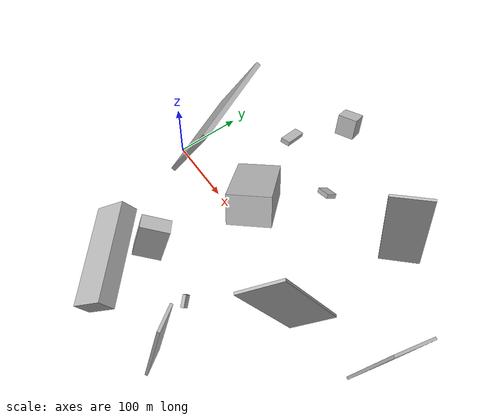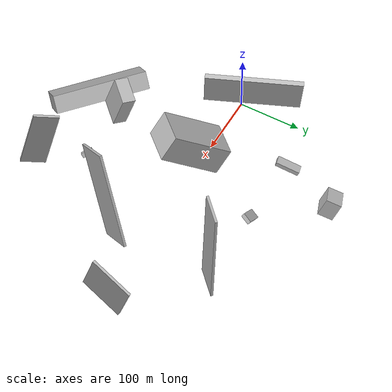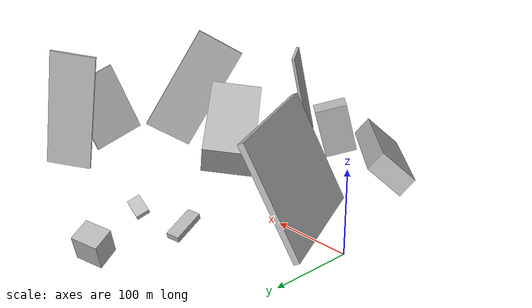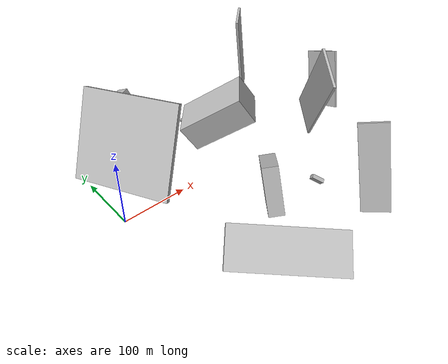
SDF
<sdf version="1.6">
 <world name="default">
  <scene>
   <sky><clouds><speed>12</speed></clouds></sky>
   <ambient>0.4 0.4 0.4 1</ambient>
   <background>0.7 0.7 0.7 1</background>
   <shadows>1</shadows>
  </scene>
  <gravity>0 0 -9.8066</gravity>
  <magnetic_field>6e-06 2.3e-05 -4.2e-05</magnetic_field>
  <physics default="0" name="default_physics" type="ode">
   <ode>
    <solver>
     <type>quick</type>
     <iters>10</iters>
     <sor>1.0</sor>
     <use_dynamic_moi_rescaling>0</use_dynamic_moi_rescaling>
    </solver>
    <constraints>
     <cfm>0</cfm>
     <erp>0.2</erp>
     <contact_max_correcting_vel>100</contact_max_correcting_vel>
     <contact_surface_layer>0.001</contact_surface_layer>
    </constraints>
   </ode>
   <max_step_size>0.004</max_step_size>
   <real_time_factor>1</real_time_factor>
   <real_time_update_rate>250</real_time_update_rate>
  </physics>
  <light name="sun" type="directional">
   <pose>0 0 10 0 0 0</pose>
   <diffuse>0.8 0.8 0.8 1</diffuse>
   <specular>0.2 0.2 0.2 1</specular>
   <attenuation>
    <range>1000</range>
    <constant>0.9</constant>
    <linear>0.01</linear>
    <quadratic>0.001</quadratic>
   </attenuation>
   <direction>-0.5 0.1 -0.9</direction>
  </light>
  <model name="building_1">
   <static>0</static>
   <pose>148.59573698334424 38.618090232906276 72.32729237490896 0.9917327861932319 -0.1207414225369029 0.8075930396522253</pose>
   <link name="link">
    <gravity>0</gravity>
    <pose>0 0 50.5 0 0 0</pose>
    <collision name="collision"><geometry><box><size>60 44 101</size></box></geometry></collision>
    <visual name="visual">
     <cast_shadows>0</cast_shadows>
     <geometry><box><size>60 44 101</size></box></geometry>
     <material>
      <script>
       <uri>model://HANNAS_wall/materials/scripts</uri>
       <uri>model://HANNAS_wall/materials/textures</uri>
       <name>vrc/HANNAS_wall</name>
      </script>
     </material>
    </visual>
   </link>
  </model>
  <model name="building_2">
   <static>0</static>
   <pose>69.33988793135556 -29.163788353206915 97.58062069845371 1.612977661409738 -0.4467218302098498 -2.721089853986741</pose>
   <link name="link">
    <gravity>0</gravity>
    <pose>0 0 75.0 0 0 0</pose>
    <collision name="collision"><geometry><box><size>7 133 150</size></box></geometry></collision>
    <visual name="visual">
     <cast_shadows>0</cast_shadows>
     <geometry><box><size>7 133 150</size></box></geometry>
     <material>
      <script>
       <uri>model://HANNAS_wall/materials/scripts</uri>
       <uri>model://HANNAS_wall/materials/textures</uri>
       <name>vrc/HANNAS_wall</name>
      </script>
     </material>
    </visual>
   </link>
  </model>
  <model name="building_3">
   <static>0</static>
   <pose>229.8250695890826 -141.8521428074591 35.87853912610167 -0.5310234330682875 -0.48151077686591665 2.3074289045993854</pose>
   <link name="link">
    <gravity>0</gravity>
    <pose>0 0 4.0 0 0 0</pose>
    <collision name="collision"><geometry><box><size>18 6 8</size></box></geometry></collision>
    <visual name="visual">
     <cast_shadows>0</cast_shadows>
     <geometry><box><size>18 6 8</size></box></geometry>
     <material>
      <script>
       <uri>model://HANNAS_wall/materials/scripts</uri>
       <uri>model://HANNAS_wall/materials/textures</uri>
       <name>vrc/HANNAS_wall</name>
      </script>
     </material>
    </visual>
   </link>
  </model>
  <model name="building_4">
   <static>0</static>
   <pose>312.9940000170616 -78.56805407281824 84.51082523180419 1.0306299967371737 0.015022599387405099 2.574527632856804</pose>
   <link name="link">
    <gravity>0</gravity>
    <pose>0 0 33.5 0 0 0</pose>
    <collision name="collision"><geometry><box><size>4 150 67</size></box></geometry></collision>
    <visual name="visual">
     <cast_shadows>0</cast_shadows>
     <geometry><box><size>4 150 67</size></box></geometry>
     <material>
      <script>
       <uri>model://HANNAS_wall/materials/scripts</uri>
       <uri>model://HANNAS_wall/materials/textures</uri>
       <name>vrc/HANNAS_wall</name>
      </script>
     </material>
    </visual>
   </link>
  </model>
  <model name="building_5">
   <static>0</static>
   <pose>449.04793078908716 17.94336444139219 61.048956384802764 1.4348825759160682 -0.34901845982044816 -1.7422928291599966</pose>
   <link name="link">
    <gravity>0</gravity>
    <pose>0 0 2.0 0 0 0</pose>
    <collision name="collision"><geometry><box><size>72 102 4</size></box></geometry></collision>
    <visual name="visual">
     <cast_shadows>0</cast_shadows>
     <geometry><box><size>72 102 4</size></box></geometry>
     <material>
      <script>
       <uri>model://HANNAS_wall/materials/scripts</uri>
       <uri>model://HANNAS_wall/materials/textures</uri>
       <name>vrc/HANNAS_wall</name>
      </script>
     </material>
    </visual>
   </link>
  </model>
  <model name="building_6">
   <static>0</static>
   <pose>52.3630367073143 -145.783155721114 34.259805752475074 1.6520265192420178 0.8616925205423712 0.8769214502343612</pose>
   <link name="link">
    <gravity>0</gravity>
    <pose>0 0 75.0 0 0 0</pose>
    <collision name="collision"><geometry><box><size>28 55 150</size></box></geometry></collision>
    <visual name="visual">
     <cast_shadows>0</cast_shadows>
     <geometry><box><size>28 55 150</size></box></geometry>
     <material>
      <script>
       <uri>model://HANNAS_wall/materials/scripts</uri>
       <uri>model://HANNAS_wall/materials/textures</uri>
       <name>vrc/HANNAS_wall</name>
      </script>
     </material>
    </visual>
   </link>
  </model>
  <model name="building_7">
   <static>0</static>
   <pose>207.4757840895617 132.42555432523727 21.22812218160714 0.8628881097274628 0.8948302964202234 -0.9189973401854054</pose>
   <link name="link">
    <gravity>0</gravity>
    <pose>0 0 8.0 0 0 0</pose>
    <collision name="collision"><geometry><box><size>7 24 16</size></box></geometry></collision>
    <visual name="visual">
     <cast_shadows>0</cast_shadows>
     <geometry><box><size>7 24 16</size></box></geometry>
     <material>
      <script>
       <uri>model://HANNAS_wall/materials/scripts</uri>
       <uri>model://HANNAS_wall/materials/textures</uri>
       <name>vrc/HANNAS_wall</name>
      </script>
     </material>
    </visual>
   </link>
  </model>
  <model name="building_8">
   <static>0</static>
   <pose>96.63271920750111 134.5459921934267 42.36951978550388 1.2859146248871265 -1.214840556894279 2.101307636927492</pose>
   <link name="link">
    <gravity>0</gravity>
    <pose>0 0 7.5 0 0 0</pose>
    <collision name="collision"><geometry><box><size>7 38 15</size></box></geometry></collision>
    <visual name="visual">
     <cast_shadows>0</cast_shadows>
     <geometry><box><size>7 38 15</size></box></geometry>
     <material>
      <script>
       <uri>model://HANNAS_wall/materials/scripts</uri>
       <uri>model://HANNAS_wall/materials/textures</uri>
       <name>vrc/HANNAS_wall</name>
      </script>
     </material>
    </visual>
   </link>
  </model>
  <model name="building_9">
   <static>0</static>
   <pose>138.76028203488423 214.3047294527741 46.254699254681434 2.734526772120994 -1.1425613050619117 2.3196305027454684</pose>
   <link name="link">
    <gravity>0</gravity>
    <pose>0 0 12.5 0 0 0</pose>
    <collision name="collision"><geometry><box><size>32 30 25</size></box></geometry></collision>
    <visual name="visual">
     <cast_shadows>0</cast_shadows>
     <geometry><box><size>32 30 25</size></box></geometry>
     <material>
      <script>
       <uri>model://HANNAS_wall/materials/scripts</uri>
       <uri>model://HANNAS_wall/materials/textures</uri>
       <name>vrc/HANNAS_wall</name>
      </script>
     </material>
    </visual>
   </link>
  </model>
  <model name="building_10">
   <static>0</static>
   <pose>139.2294750816924 -147.31629167636171 42.29662434021437 0.1661128573638638 -0.2548068872433422 -2.3005017764402833</pose>
   <link name="link">
    <gravity>0</gravity>
    <pose>0 0 34.0 0 0 0</pose>
    <collision name="collision"><geometry><box><size>41 21 68</size></box></geometry></collision>
    <visual name="visual">
     <cast_shadows>0</cast_shadows>
     <geometry><box><size>41 21 68</size></box></geometry>
     <material>
      <script>
       <uri>model://HANNAS_wall/materials/scripts</uri>
       <uri>model://HANNAS_wall/materials/textures</uri>
       <name>vrc/HANNAS_wall</name>
      </script>
     </material>
    </visual>
   </link>
  </model>
  <model name="building_11">
   <static>0</static>
   <pose>254.68928216379564 -189.92048487550946 71.12229708579366 0.662530271908224 -1.3262548222614245 1.5102295711273166</pose>
   <link name="link">
    <gravity>0</gravity>
    <pose>0 0 20.0 0 0 0</pose>
    <collision name="collision"><geometry><box><size>134 4 40</size></box></geometry></collision>
    <visual name="visual">
     <cast_shadows>0</cast_shadows>
     <geometry><box><size>134 4 40</size></box></geometry>
     <material>
      <script>
       <uri>model://HANNAS_wall/materials/scripts</uri>
       <uri>model://HANNAS_wall/materials/textures</uri>
       <name>vrc/HANNAS_wall</name>
      </script>
     </material>
    </visual>
   </link>
  </model>
  <model name="building_12">
   <static>0</static>
   <pose>317.77254250818726 110.76081126530231 104.9208751791671 1.4270112895562832 0.0680807093796244 2.3001298018966705</pose>
   <link name="link">
    <gravity>0</gravity>
    <pose>0 0 28.0 0 0 0</pose>
    <collision name="collision"><geometry><box><size>4 150 56</size></box></geometry></collision>
    <visual name="visual">
     <cast_shadows>0</cast_shadows>
     <geometry><box><size>4 150 56</size></box></geometry>
     <material>
      <script>
       <uri>model://HANNAS_wall/materials/scripts</uri>
       <uri>model://HANNAS_wall/materials/textures</uri>
       <name>vrc/HANNAS_wall</name>
      </script>
     </material>
    </visual>
   </link>
  </model>
 </world>
</sdf>
